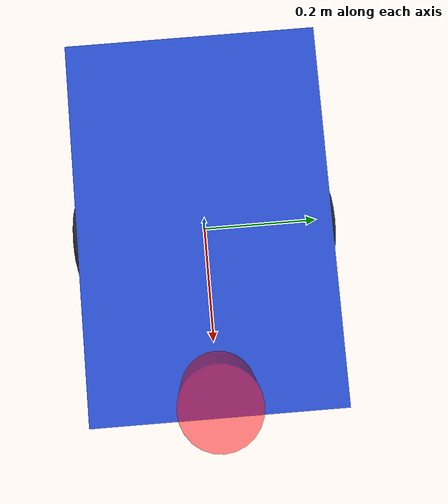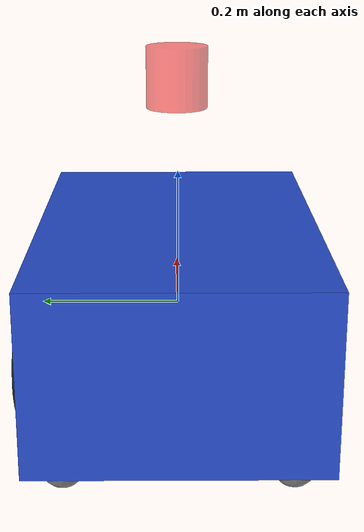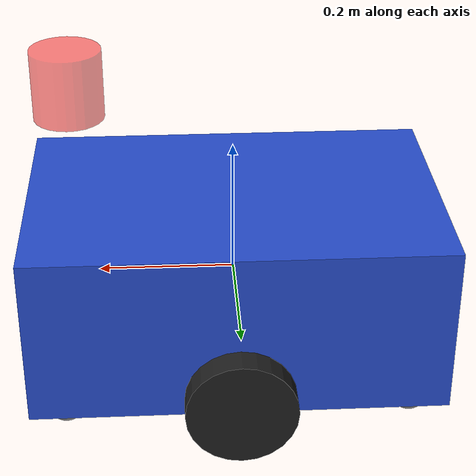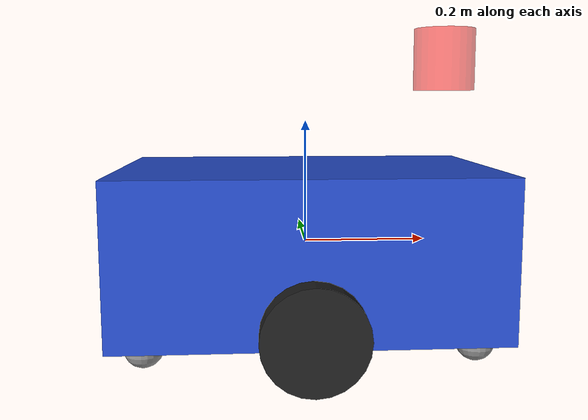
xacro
<?xml version="1.0"?>
<robot xmlns:xacro="http://www.ros.org/wiki/xacro" name="my_vehicle">

  <xacro:include filename="$(find vehicle_description)/urdf/base.xacro"/>
  <xacro:include filename="$(find vehicle_description)/urdf/wheels.xacro"/>
  <xacro:include filename="$(find vehicle_description)/urdf/differential.xacro"/>
  <xacro:include filename="$(find vehicle_description)/urdf/lidar.xacro"/>

  <!-- Global constant -->
  <xacro:property name="pi" value="3.1415926535897931" scope="global"/>

  <!-- Base Link -->
  <xacro:base_link/>

  <!-- =====================  Drive Wheels  ===================== -->
  <!-- Lateral offset ~0.22 m, vertical -0.10 m puts wheel tangent just below chassis -->
  <xacro:main_wheel side="left"  parent="base_link" xyz="0  0.22 -0.10" rpy="${pi/2} 0 0"/>
  <xacro:main_wheel side="right" parent="base_link" xyz="0 -0.22 -0.10" rpy="${pi/2} 0 0"/>

  <!-- =====================  Support Wheels  ===================== -->
  <!-- front / rear offset 0.25 m, lateral 0.15 m, vertical -0.13 m -->
  <xacro:support_wheel name="front_left"  parent="base_link" xyz=" 0.25  0.15 -0.13"/>
  <xacro:support_wheel name="front_right" parent="base_link" xyz=" 0.25 -0.15 -0.13"/>
  <xacro:support_wheel name="rear_left"   parent="base_link" xyz="-0.25  0.15 -0.13"/>
  <xacro:support_wheel name="rear_right"  parent="base_link" xyz="-0.25 -0.15 -0.13"/>

  <!-- =====================  Control & Sensors  ===================== -->
  <xacro:differential_drive/>
  <xacro:wheel_transmissions/>
  <xacro:lidar_sensor name="hokuyo" parent="base_link" xyz="0.23 0 0.30" rpy="0 0 0"/>

</robot>

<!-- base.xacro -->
<robot xmlns:xacro="http://www.ros.org/wiki/xacro">

  <!--
    Scaled‑down chassis for nicer proportions in Gazebo.
    Original: 0.95 x 0.85 x 0.47 m  |  New: 0.60 x 0.40 x 0.25 m
  -->
  <xacro:property name="body_length" value="0.60"/>
  <xacro:property name="body_width"  value="0.40"/>
  <xacro:property name="body_height" value="0.25"/>

  <xacro:macro name="base_link">
    <link name="base_link">
      <inertial>
        <mass value="10.0"/>
        <origin xyz="0 0 0"/>
        <!-- simple box inertia approximation -->
        <inertia ixx="0.05" ixy="0" ixz="0" iyy="0.05" iyz="0" izz="0.05"/>
      </inertial>

      <visual>
        <geometry>
          <box size="${body_length} ${body_width} ${body_height}"/>
        </geometry>
        <material name="blue"/>
      </visual>

      <collision>
        <geometry>
          <box size="${body_length} ${body_width} ${body_height}"/>
        </geometry>
      </collision>

      <gazebo reference="base_link">
        <material>Gazebo/Blue</material>
      </gazebo>
    </link>
  </xacro:macro>
</robot>

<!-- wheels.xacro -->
<robot xmlns:xacro="http://www.ros.org/wiki/xacro">

  <!-- Scaled wheels -->
  <xacro:property name="wheel_radius" value="0.08"/>   <!-- was 0.10 -->
  <xacro:property name="wheel_width"  value="0.04"/>   <!-- was 0.05 -->
  <xacro:property name="support_wheel_radius" value="0.03"/>

 <xacro:macro name="main_wheel" params="side parent xyz rpy">
    <link name="${side}_wheel">
      <inertial>
        <mass value="0.3"/>
        <origin xyz="0 0 0"/>
        <inertia ixx="0.005" ixy="0" ixz="0" iyy="0.005" iyz="0" izz="0.005"/>
      </inertial>

      <visual>
        <geometry>
          <cylinder radius="${wheel_radius}" length="${wheel_width}"/>
        </geometry>
        <material name="black"/>
      </visual>

      <collision>
        <geometry>
          <cylinder radius="${wheel_radius}" length="${wheel_width}"/>
        </geometry>
      </collision>

      <gazebo reference="${side}_wheel">
        <material>Gazebo/Black</material>
        <mu1 value="1.0"/>
        <mu2 value="1.0"/>
      </gazebo>
    </link>

<joint name="${side}_wheel_joint" type="continuous">
  <parent link="${parent}"/>
  <child  link="${side}_wheel"/>
  <origin xyz="${xyz}" rpy="${rpy}"/>
  <axis xyz="0 1 0"/>
    </joint>
  </xacro:macro>

  <xacro:macro name="support_wheel" params="name parent xyz">
    <link name="${name}_support_wheel">
      <inertial>
        <mass value="0.05"/>
        <origin xyz="0 0 0"/>
        <inertia ixx="0.0005" ixy="0" ixz="0" iyy="0.0005" iyz="0" izz="0.0005"/>
      </inertial>

      <visual>
        <geometry>
          <sphere radius="${support_wheel_radius}"/>
        </geometry>
        <material name="gray"/>
      </visual>

      <collision>
        <geometry>
          <sphere radius="${support_wheel_radius}"/>
        </geometry>
      </collision>

      <gazebo reference="${name}_support_wheel">
        <material>Gazebo/Gray</material>
        <mu1 value="0.5"/>
        <mu2 value="0.5"/>
      </gazebo>
    </link>

    <joint name="${name}_support_joint" type="continuous">
      <parent link="${parent}"/>
      <child link="${name}_support_wheel"/>
      <origin xyz="${xyz}" rpy="0 0 0"/>
      <axis xyz="1 1 1"/>
    </joint>
  </xacro:macro>
</robot>

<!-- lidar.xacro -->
<robot xmlns:xacro="http://www.ros.org/wiki/xacro">

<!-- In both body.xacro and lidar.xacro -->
  <xacro:property name="pi" value="3.1415926535897931" scope="global"/>
  <xacro:macro name="lidar_sensor" params="name parent xyz rpy">
    <link name="${name}_link">
      <inertial>
        <mass value="0.1"/>
        <origin xyz="0 0 0"/>
        <inertia ixx="0.001" ixy="0" ixz="0" iyy="0.001" iyz="0" izz="0.001"/>
      </inertial>

      <visual>
        <geometry>
          <cylinder radius="0.05" length="0.1"/>
        </geometry>
        <material name="red">
          <color rgba="1 0 0 0.5"/>
        </material>
      </visual>

      <collision>
        <geometry>
          <cylinder radius="0.05" length="0.1"/>
        </geometry>
      </collision>
    </link>

    <joint name="${name}_joint" type="fixed">
      <parent link="${parent}"/>
      <child link="${name}_link"/>
      <origin xyz="${xyz}" rpy="${rpy}"/>
    </joint>

    <!-- Gazebo LIDAR Plugin -->
    <gazebo reference="${name}_link">
      <sensor type="ray" name="${name}_sensor">
        <pose>0 0 0 0 0 0</pose>
        <visualize>true</visualize>
        <update_rate>12</update_rate>
        <ray>
          <scan>
            <horizontal>
              <samples>720</samples>
              <resolution>1</resolution>
              <min_angle>-${pi}</min_angle>
              <max_angle>${pi}</max_angle>
            </horizontal>
          </scan>
          <range>
            <min>0.10</min>
            <max>12.0</max>
            <resolution>0.01</resolution>
          </range>
          <noise>
            <type>gaussian</type>
            <mean>0.0</mean>
            <stddev>0.01</stddev>
          </noise>
        </ray>
        <plugin name="gazebo_ros_${name}_controller" filename="libgazebo_ros_laser.so">
          <topicName>/scan</topicName>
          <frameName>${name}_link</frameName>
        </plugin>
      </sensor>
    </gazebo>
  </xacro:macro>
</robot>
